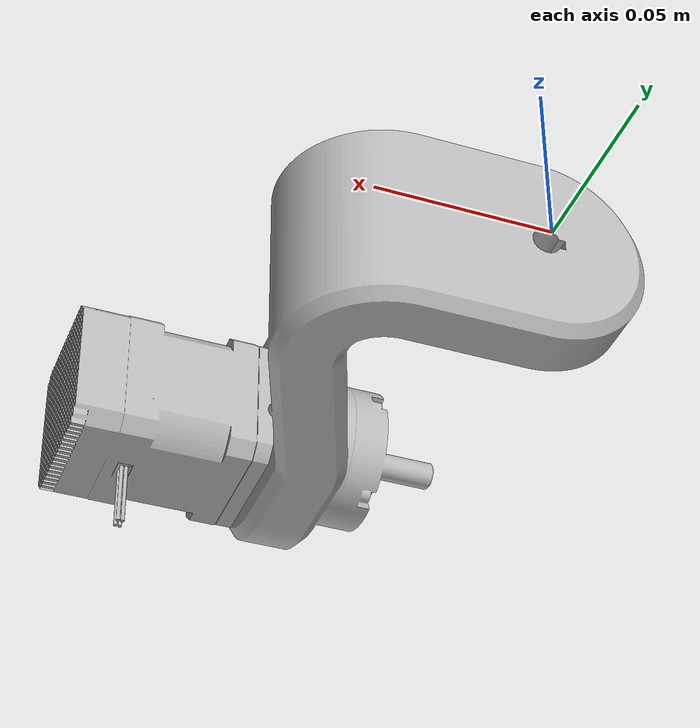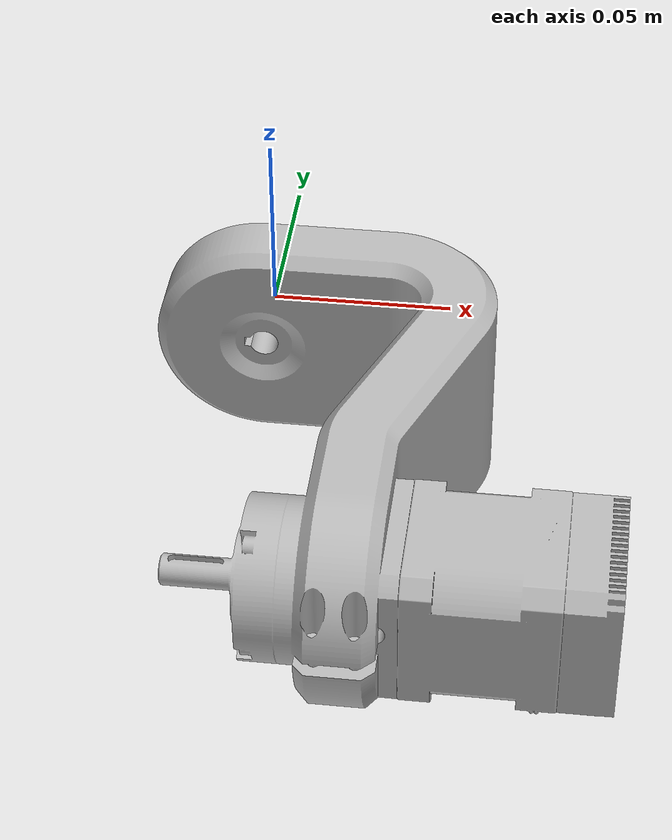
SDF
<?xml version="1.0"?>
<sdf version="1.9">
  <model name="steering_wheel">
    <static>false</static>
    <link name="link">
      <inertial>
        <mass>0.932506</mass>
        <pose>0.042088 -0.073251 -0.000032 0 0 0</pose>
        <inertia>
          <ixx>2.04575731e-03</ixx>
          <ixy>5.50845635e-04</ixy>
          <ixz>4.85933074e-07</ixz>
          <iyy>9.04458349e-04</iyy>
          <iyz>-1.71961002e-06</iyz>
          <izz>2.52192151e-03</izz>
        </inertia>
      </inertial>
      <visual name="visual">
        <geometry>
          <mesh>
            <uri>model://steering_wheel/meshes/steering_wheel.stl</uri>
            <scale>0.001 0.001 0.001</scale>
          </mesh>
        </geometry>
      </visual>
      <collision name="collision">
        <geometry>
          <mesh>
            <uri>model://steering_wheel/meshes/steering_wheel.stl</uri>
            <scale>0.001 0.001 0.001</scale>
          </mesh>
        </geometry>
      </collision>
    </link>
  </model>
</sdf>
